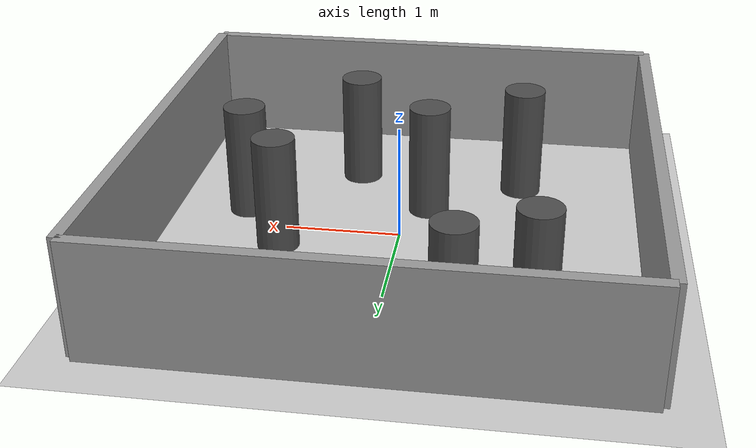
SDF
<?xml version="1.0" ?>
<sdf version="1.6">
  <world name="dense_custom">

    <!-- Physics -->
    <physics type="ode">
      <real_time_update_rate>0.0</real_time_update_rate>
      <max_step_size>0.001</max_step_size>
      <real_time_factor>1.0</real_time_factor>
      <ode>
        <solver>
          <type>quick</type>
          <iters>50</iters>
          <precon_iters>0</precon_iters>
          <sor>1.400000</sor>
        </solver>
        <constraints>
          <cfm>0.00001</cfm>
          <erp>0.2</erp>
          <contact_max_correcting_vel>2000.000000</contact_max_correcting_vel>
          <contact_surface_layer>0.01000</contact_surface_layer>
        </constraints>
      </ode>
    </physics>

    <!-- Lighting -->
    <include>
      <uri>model://sun</uri>
    </include>

    <!-- Ground plane -->
    <include>
      <uri>model://ground_plane</uri>
    </include>

    <!-- Bounding walls (4m x 4m arena) -->
    <model name="wall_north">
      <static>true</static>
      <pose>0 2.1 0.5 0 0 0</pose>
      <link name="link">
        <collision name="col"><geometry><box><size>4.2 0.1 1.0</size></box></geometry></collision>
        <visual name="vis"><geometry><box><size>4.2 0.1 1.0</size></box></geometry>
          <material><script><name>Gazebo/Grey</name></script></material>
        </visual>
      </link>
    </model>

    <model name="wall_south">
      <static>true</static>
      <pose>0 -2.1 0.5 0 0 0</pose>
      <link name="link">
        <collision name="col"><geometry><box><size>4.2 0.1 1.0</size></box></geometry></collision>
        <visual name="vis"><geometry><box><size>4.2 0.1 1.0</size></box></geometry>
          <material><script><name>Gazebo/Grey</name></script></material>
        </visual>
      </link>
    </model>

    <model name="wall_east">
      <static>true</static>
      <pose>2.1 0 0.5 0 0 1.5708</pose>
      <link name="link">
        <collision name="col"><geometry><box><size>4.2 0.1 1.0</size></box></geometry></collision>
        <visual name="vis"><geometry><box><size>4.2 0.1 1.0</size></box></geometry>
          <material><script><name>Gazebo/Grey</name></script></material>
        </visual>
      </link>
    </model>

    <model name="wall_west">
      <static>true</static>
      <pose>-2.1 0 0.5 0 0 1.5708</pose>
      <link name="link">
        <collision name="col"><geometry><box><size>4.2 0.1 1.0</size></box></geometry></collision>
        <visual name="vis"><geometry><box><size>4.2 0.1 1.0</size></box></geometry>
          <material><script><name>Gazebo/Grey</name></script></material>
        </visual>
      </link>
    </model>

    <!-- Cylindrical obstacles — radius 0.18 m, height 1.0 m -->
    <!-- Cluster A: top-left -->
    <model name="obs_0">
      <static>true</static>
      <pose>-1.2 1.2 0.5 0 0 0</pose>
      <link name="link">
        <collision name="col"><geometry><cylinder><radius>0.18</radius><length>1.0</length></cylinder></geometry></collision>
        <visual name="vis"><geometry><cylinder><radius>0.18</radius><length>1.0</length></cylinder></geometry>
          <material><script><name>Gazebo/DarkGrey</name></script></material>
        </visual>
      </link>
    </model>

    <model name="obs_1">
      <static>true</static>
      <pose>-0.6 1.5 0.5 0 0 0</pose>
      <link name="link">
        <collision name="col"><geometry><cylinder><radius>0.18</radius><length>1.0</length></cylinder></geometry></collision>
        <visual name="vis"><geometry><cylinder><radius>0.18</radius><length>1.0</length></cylinder></geometry>
          <material><script><name>Gazebo/DarkGrey</name></script></material>
        </visual>
      </link>
    </model>

    <!-- Cluster B: centre-right -->
    <model name="obs_2">
      <static>true</static>
      <pose>1.0 0.3 0.5 0 0 0</pose>
      <link name="link">
        <collision name="col"><geometry><cylinder><radius>0.18</radius><length>1.0</length></cylinder></geometry></collision>
        <visual name="vis"><geometry><cylinder><radius>0.18</radius><length>1.0</length></cylinder></geometry>
          <material><script><name>Gazebo/DarkGrey</name></script></material>
        </visual>
      </link>
    </model>

    <model name="obs_3">
      <static>true</static>
      <pose>1.4 -0.3 0.5 0 0 0</pose>
      <link name="link">
        <collision name="col"><geometry><cylinder><radius>0.18</radius><length>1.0</length></cylinder></geometry></collision>
        <visual name="vis"><geometry><cylinder><radius>0.18</radius><length>1.0</length></cylinder></geometry>
          <material><script><name>Gazebo/DarkGrey</name></script></material>
        </visual>
      </link>
    </model>

    <!-- Cluster C: centre diagonal -->
    <model name="obs_4">
      <static>true</static>
      <pose>-0.2 -0.5 0.5 0 0 0</pose>
      <link name="link">
        <collision name="col"><geometry><cylinder><radius>0.18</radius><length>1.0</length></cylinder></geometry></collision>
        <visual name="vis"><geometry><cylinder><radius>0.18</radius><length>1.0</length></cylinder></geometry>
          <material><script><name>Gazebo/DarkGrey</name></script></material>
        </visual>
      </link>
    </model>

    <model name="obs_5">
      <static>true</static>
      <pose>0.5 -1.1 0.5 0 0 0</pose>
      <link name="link">
        <collision name="col"><geometry><cylinder><radius>0.18</radius><length>1.0</length></cylinder></geometry></collision>
        <visual name="vis"><geometry><cylinder><radius>0.18</radius><length>1.0</length></cylinder></geometry>
          <material><script><name>Gazebo/DarkGrey</name></script></material>
        </visual>
      </link>
    </model>

    <!-- Singleton: near centre -->
    <model name="obs_6">
      <static>true</static>
      <pose>-1.0 -1.0 0.5 0 0 0</pose>
      <link name="link">
        <collision name="col"><geometry><cylinder><radius>0.18</radius><length>1.0</length></cylinder></geometry></collision>
        <visual name="vis"><geometry><cylinder><radius>0.18</radius><length>1.0</length></cylinder></geometry>
          <material><script><name>Gazebo/DarkGrey</name></script></material>
        </visual>
      </link>
    </model>

    <!-- GUI camera -->
    <gui fullscreen="0">
      <camera name="user_camera">
        <pose>0 0 8 0 1.5708 0</pose>
        <view_controller>orbit</view_controller>
      </camera>
    </gui>

  </world>
</sdf>
